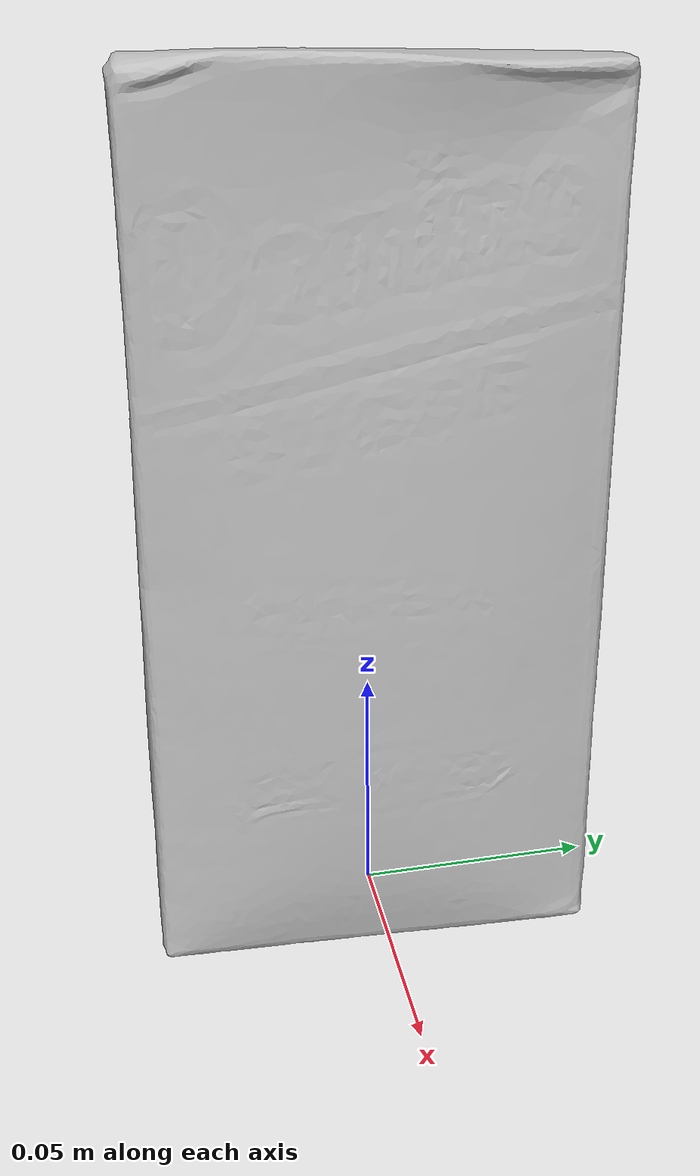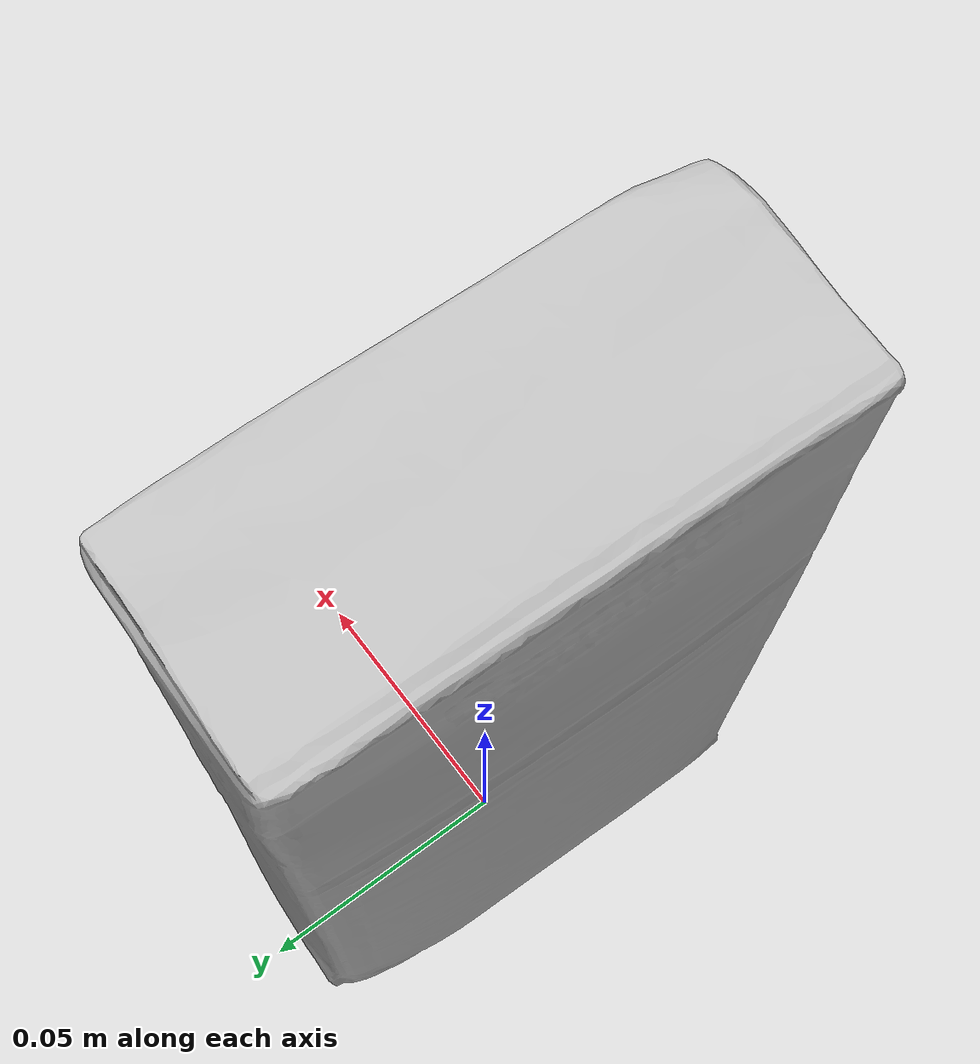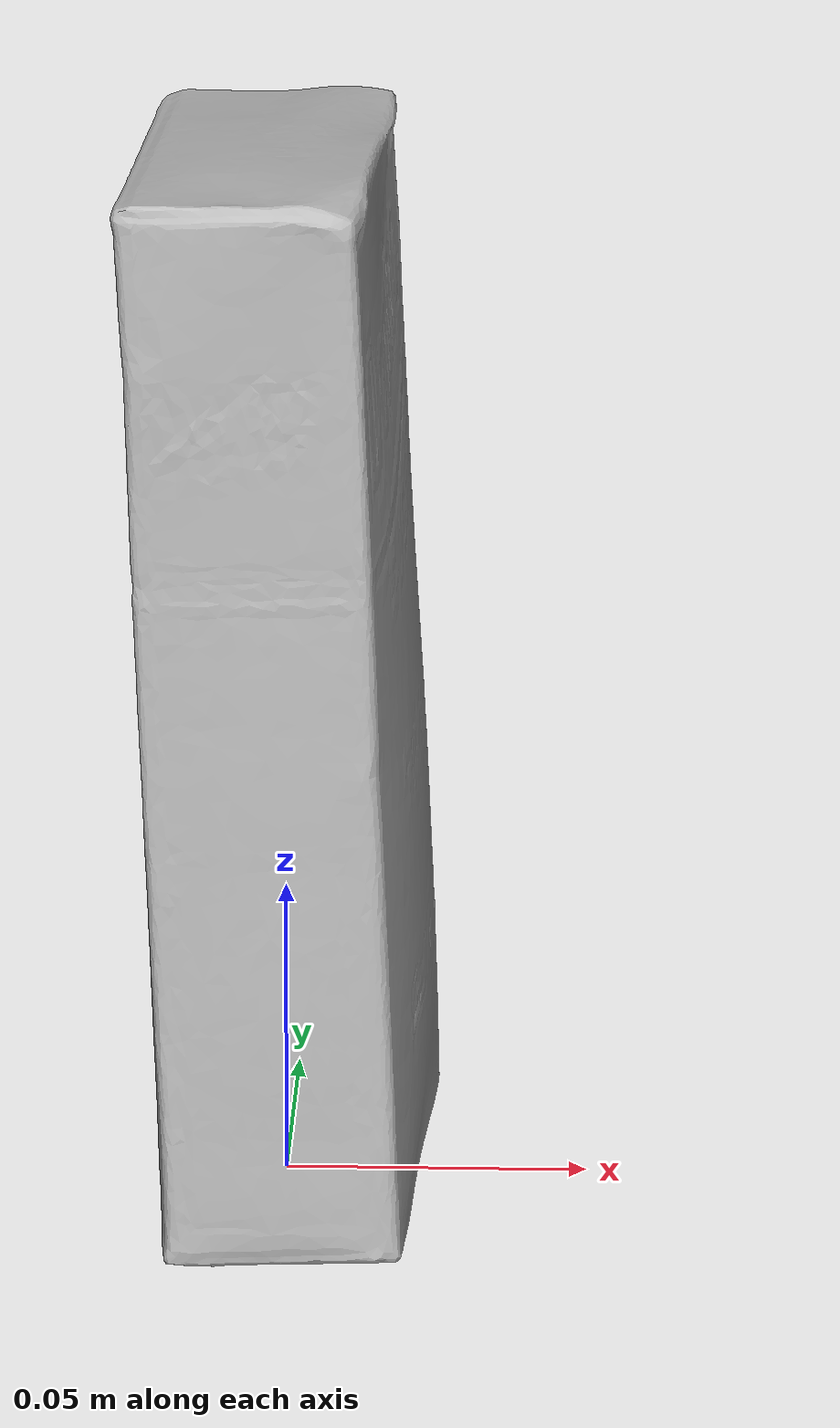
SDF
<?xml version="1.0" ?>
<sdf version='1.8'>
  <model name='ycb_002_sugar_box'>
    <link name='body'>
      <inertial>
        <mass>0.514</mass>
        <pose>-0.000267415537 -0.00044216313 0.085933814 0 0 0</pose>
        <inertia>
          <ixx>0.00162065429869</ixx>
          <ixy>-9.49129245602e-06</ixy>
          <ixz>4.81821825212e-05</ixz>
          <iyy>0.00135931207958</iyy>
          <iyz>-1.64061737271e-05</iyz>
          <izz>0.000408012196346</izz>
        </inertia>
      </inertial>
      <visual name='ycb_002_sugar_box_visual'>
        <pose>0.007431 0.016636 -9e-05 0 0 0</pose>
        <geometry>
          <mesh>
            <uri>model://ycb_002_sugar_box/meshes/textured.dae</uri>
          </mesh>
        </geometry>
      </visual>
      <collision name='ycb_002_sugar_box_collision'>
        <pose>0.007431 0.016636 -9e-05 0 0 0</pose>
        <geometry>
          <mesh>
            <uri>model://ycb_002_sugar_box/meshes/nontextured.stl</uri>
          </mesh>
        </geometry>
        <max_contacts>10</max_contacts>
        <surface>
          <contact>
            <ode>
              <kp>1e15</kp>
              <kd>1e13</kd>
            </ode>
          </contact>
        </surface>
      </collision>
    </link>
  </model>
</sdf>
